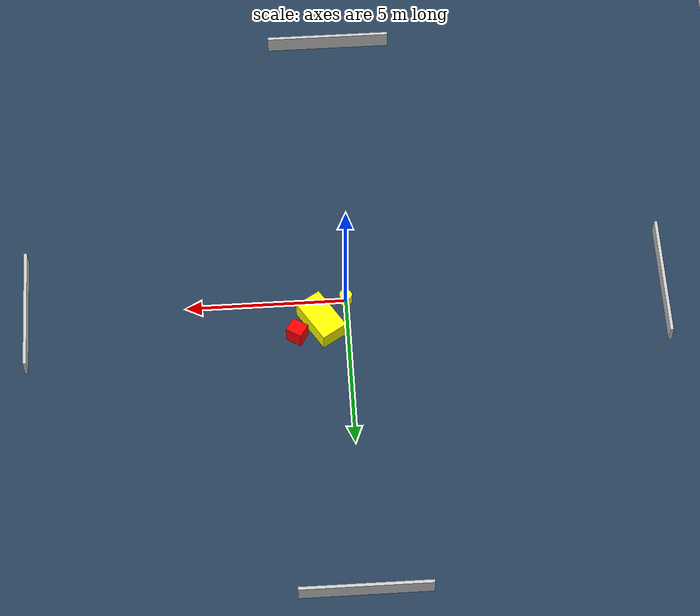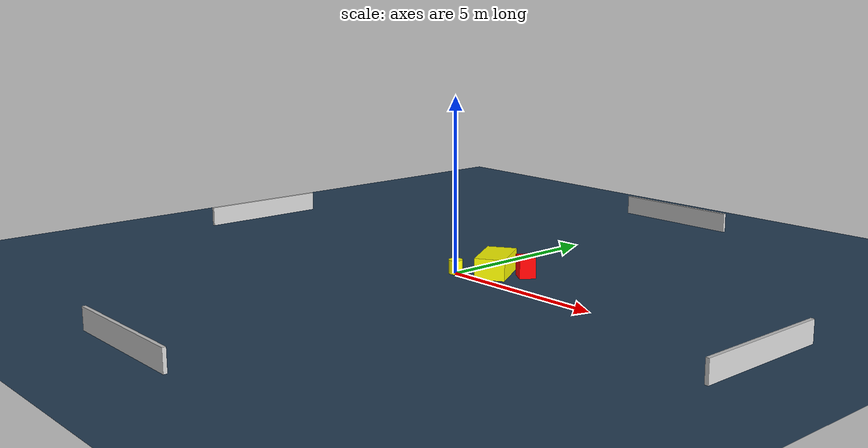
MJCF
<?xml version="1.0" ?>
<mujoco model="generated_environment">
  <option timestep="0.01" integrator="RK4" cone="elliptic"/>
  <default>
    <geom density="1"/>
  </default>
  <asset>
    <texture builtin="gradient" height="3072" name="skybox" rgb1="0.3 0.5 0.7" rgb2="0 0 0" type="skybox" width="512"/>
    <texture builtin="checker" height="300" name="groundplane" rgb1="0.2 0.3 0.4" rgb2="0.1 0.2 0.3" type="2d" width="300"/>
    <material name="groundplane" reflectance="0.2" texrepeat="5 5" texture="groundplane"/>
  </asset>
  <worldbody>
    <light dir="0 0 -1" directional="true" pos="0 0 1.5"/>
    <geom condim="3" friction="0.5 0.005 0.001" material="groundplane" name="floor" pos="0 0 0" size="0 0 0.05" type="plane"/>
    <body name="walls">
      <geom name="wall_1" condim="4" pos="-10.0 0.0 0.3" rgba="0.800000011920929 0.800000011920929 0.800000011920929 1.0" size="0.05 2.0 0.3" type="box"/>
      <geom name="wall_2" condim="4" pos="10.0 0.0 0.3" rgba="0.800000011920929 0.800000011920929 0.800000011920929 1.0" size="0.05 2.0 0.3" type="box"/>
      <geom name="wall_3" condim="4" pos="0.0 -10.0 0.3" rgba="0.800000011920929 0.800000011920929 0.800000011920929 1.0" size="2.0 0.05 0.3" type="box"/>
      <geom name="wall_4" condim="4" pos="0.0 10.0 0.3" rgba="0.800000011920929 0.800000011920929 0.800000011920929 1.0" size="2.0 0.05 0.3" type="box"/>
    </body>
    <body name="robot">
      <joint name="joint_x" type="slide" pos="0 0 0" axis="1 0 0"/>
      <joint name="joint_y" type="slide" pos="0 0 0" axis="0 1 0"/>
      <geom name="robot" type="cylinder" pos="0.0 0.0 0.2" size="0.2 0.2 0.0" mass="5.0" friction="1.0 0.005 0.0001" condim="4" rgba="1.0 1.0 0.0 1.0"/>
    </body>
    <body name="obstacle_1_movable">
      <geom name="obstacle_1_movable" condim="4" pos="0.8103617348312961 0.7957463885003278 0.3" euler="0 0 122.02123999351409" friction="0.0 0.005 0.001" rgba="1.0 1.0 0.0 1.0" size="0.7371517687794078 0.4315869911831826 0.3" type="box" mass="0.1"/>
      <joint type="free"/>
    </body>
    <body name="obstacle_2_static">
      <geom name="obstacle_2_static" condim="4" pos="1.5835156407969766 1.2107499951444018 0.3" euler="0 0 147.3282617429433" friction="0.0 0.005 0.001" rgba="1.0 0.0 0.0 1.0" size="0.25929174292184587 0.23255426286307948 0.3" type="box"/>
    </body>
  </worldbody>
  <actuator>
    <motor name="actuator_x" joint="joint_x" gear="1" ctrlrange="-1 1"/>
    <motor name="actuator_y" joint="joint_y" gear="1" ctrlrange="-1 1"/>
  </actuator>
</mujoco>
